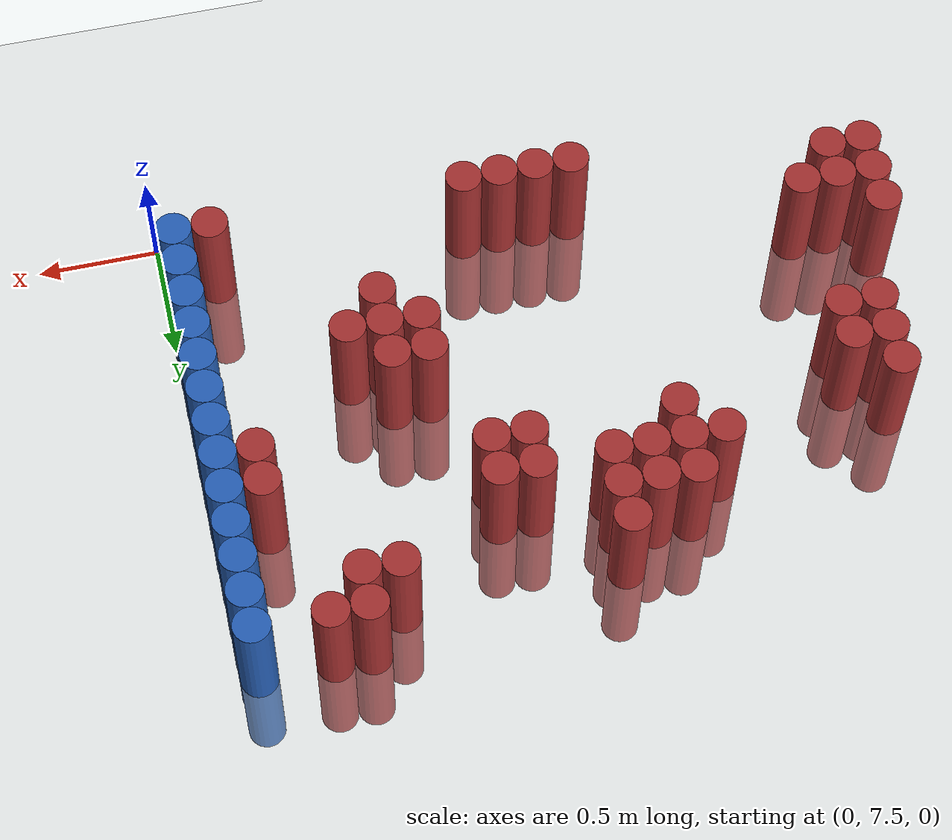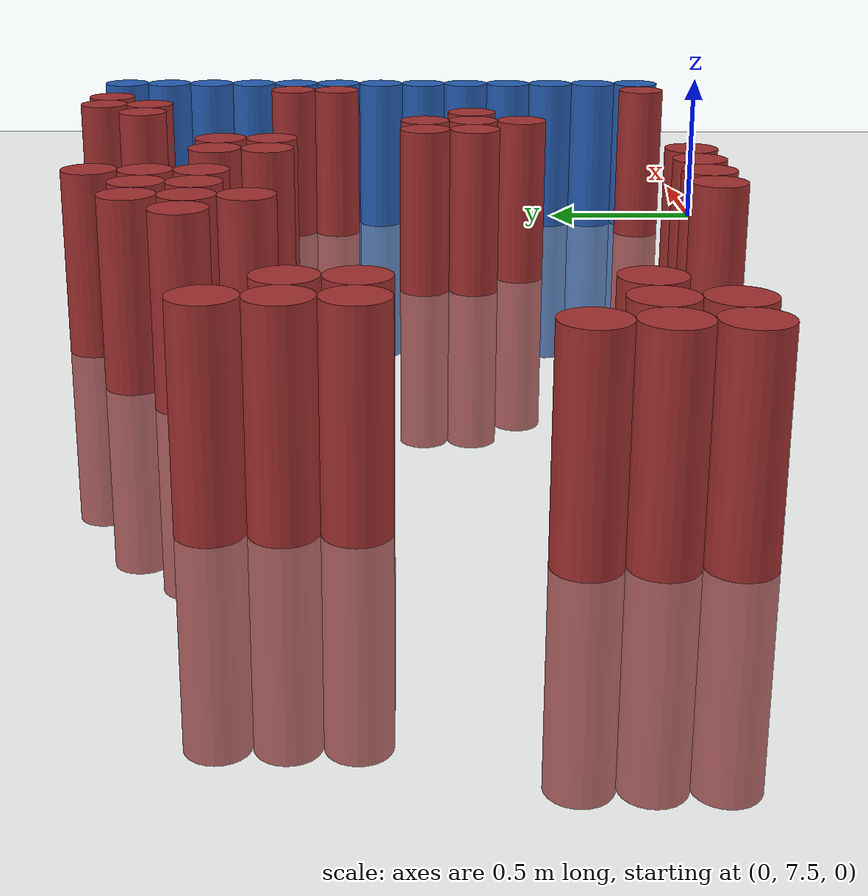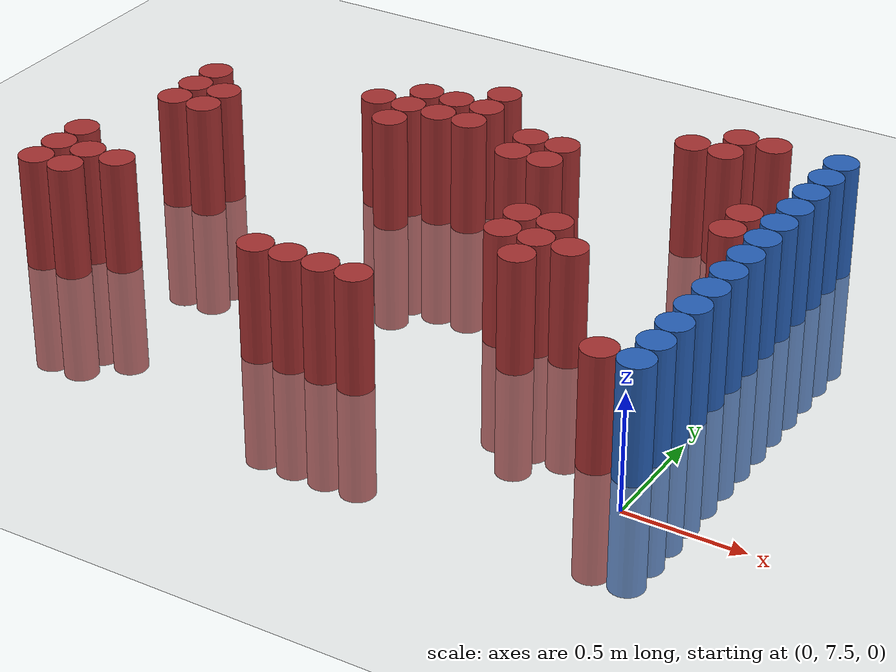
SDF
<sdf version="1.6">
 <world name="default">
  <model name="ground_plane">
   <static>1</static>
   <link name="link">
    <collision name="collision">
     <geometry><plane><normal>0 0 1</normal><size>100 100</size></plane></geometry>
     <surface><friction><ode><mu>100</mu><mu2>50</mu2></ode></friction></surface>
    </collision>
    <visual name="visual">
     <cast_shadows>0</cast_shadows>
     <geometry><plane><normal>0 0 1</normal><size>100 100</size></plane></geometry>
     <material>
      <script><uri>file://media/materials/scripts/gazebo.material</uri><name>Gazebo/Grey</name></script>
     </material>
    </visual>
   </link>
  </model>
  <model name="unit_cylinder_153">
   <static>1</static>
   <pose>-2.925000 7.875000 0.000000 0.000000 0.000000 0.000000</pose>
   <link name="link">
    <inertial>
     <mass>1</mass>
     <inertia><ixx>0.145833</ixx><ixy>0</ixy><ixz>0</ixz><iyy>0.145833</iyy><iyz>0</iyz><izz>0.125</izz></inertia>
    </inertial>
    <collision name="collision">
     <geometry><cylinder><radius>0.075000</radius><length>1</length></cylinder></geometry>
    </collision>
    <visual name="visual">
     <geometry><cylinder><radius>0.075000</radius><length>1</length></cylinder></geometry>
     <material>
      <ambient>0.648000 0.192000 0.192000 1</ambient>
      <diffuse>0.648000 0.192000 0.192000 1</diffuse>
     </material>
     <material>
      <script><name>Gazebo/Grey</name><uri>file://media/materials/scripts/gazebo.material</uri></script>
     </material>
    </visual>
   </link>
  </model>
  <model name="unit_cylinder_154">
   <static>1</static>
   <pose>-2.925000 8.025000 0.000000 0.000000 0.000000 0.000000</pose>
   <link name="link">
    <inertial>
     <mass>1</mass>
     <inertia><ixx>0.145833</ixx><ixy>0</ixy><ixz>0</ixz><iyy>0.145833</iyy><iyz>0</iyz><izz>0.125</izz></inertia>
    </inertial>
    <collision name="collision">
     <geometry><cylinder><radius>0.075000</radius><length>1</length></cylinder></geometry>
    </collision>
    <visual name="visual">
     <geometry><cylinder><radius>0.075000</radius><length>1</length></cylinder></geometry>
     <material>
      <ambient>0.648000 0.192000 0.192000 1</ambient>
      <diffuse>0.648000 0.192000 0.192000 1</diffuse>
     </material>
     <material>
      <script><name>Gazebo/Grey</name><uri>file://media/materials/scripts/gazebo.material</uri></script>
     </material>
    </visual>
   </link>
  </model>
  <model name="unit_cylinder_155">
   <static>1</static>
   <pose>-2.925000 8.175000 0.000000 0.000000 0.000000 0.000000</pose>
   <link name="link">
    <inertial>
     <mass>1</mass>
     <inertia><ixx>0.145833</ixx><ixy>0</ixy><ixz>0</ixz><iyy>0.145833</iyy><iyz>0</iyz><izz>0.125</izz></inertia>
    </inertial>
    <collision name="collision">
     <geometry><cylinder><radius>0.075000</radius><length>1</length></cylinder></geometry>
    </collision>
    <visual name="visual">
     <geometry><cylinder><radius>0.075000</radius><length>1</length></cylinder></geometry>
     <material>
      <ambient>0.648000 0.192000 0.192000 1</ambient>
      <diffuse>0.648000 0.192000 0.192000 1</diffuse>
     </material>
     <material>
      <script><name>Gazebo/Grey</name><uri>file://media/materials/scripts/gazebo.material</uri></script>
     </material>
    </visual>
   </link>
  </model>
  <model name="unit_cylinder_158">
   <static>1</static>
   <pose>-2.775000 7.875000 0.000000 0.000000 0.000000 0.000000</pose>
   <link name="link">
    <inertial>
     <mass>1</mass>
     <inertia><ixx>0.145833</ixx><ixy>0</ixy><ixz>0</ixz><iyy>0.145833</iyy><iyz>0</iyz><izz>0.125</izz></inertia>
    </inertial>
    <collision name="collision">
     <geometry><cylinder><radius>0.075000</radius><length>1</length></cylinder></geometry>
    </collision>
    <visual name="visual">
     <geometry><cylinder><radius>0.075000</radius><length>1</length></cylinder></geometry>
     <material>
      <ambient>0.648000 0.192000 0.192000 1</ambient>
      <diffuse>0.648000 0.192000 0.192000 1</diffuse>
     </material>
     <material>
      <script><name>Gazebo/Grey</name><uri>file://media/materials/scripts/gazebo.material</uri></script>
     </material>
    </visual>
   </link>
  </model>
  <model name="unit_cylinder_159">
   <static>1</static>
   <pose>-2.775000 8.025000 0.000000 0.000000 0.000000 0.000000</pose>
   <link name="link">
    <inertial>
     <mass>1</mass>
     <inertia><ixx>0.145833</ixx><ixy>0</ixy><ixz>0</ixz><iyy>0.145833</iyy><iyz>0</iyz><izz>0.125</izz></inertia>
    </inertial>
    <collision name="collision">
     <geometry><cylinder><radius>0.075000</radius><length>1</length></cylinder></geometry>
    </collision>
    <visual name="visual">
     <geometry><cylinder><radius>0.075000</radius><length>1</length></cylinder></geometry>
     <material>
      <ambient>0.648000 0.192000 0.192000 1</ambient>
      <diffuse>0.648000 0.192000 0.192000 1</diffuse>
     </material>
     <material>
      <script><name>Gazebo/Grey</name><uri>file://media/materials/scripts/gazebo.material</uri></script>
     </material>
    </visual>
   </link>
  </model>
  <model name="unit_cylinder_160">
   <static>1</static>
   <pose>-2.775000 8.625000 0.000000 0.000000 0.000000 0.000000</pose>
   <link name="link">
    <inertial>
     <mass>1</mass>
     <inertia><ixx>0.145833</ixx><ixy>0</ixy><ixz>0</ixz><iyy>0.145833</iyy><iyz>0</iyz><izz>0.125</izz></inertia>
    </inertial>
    <collision name="collision">
     <geometry><cylinder><radius>0.075000</radius><length>1</length></cylinder></geometry>
    </collision>
    <visual name="visual">
     <geometry><cylinder><radius>0.075000</radius><length>1</length></cylinder></geometry>
     <material>
      <ambient>0.648000 0.192000 0.192000 1</ambient>
      <diffuse>0.648000 0.192000 0.192000 1</diffuse>
     </material>
     <material>
      <script><name>Gazebo/Grey</name><uri>file://media/materials/scripts/gazebo.material</uri></script>
     </material>
    </visual>
   </link>
  </model>
  <model name="unit_cylinder_161">
   <static>1</static>
   <pose>-2.775000 8.775000 0.000000 0.000000 0.000000 0.000000</pose>
   <link name="link">
    <inertial>
     <mass>1</mass>
     <inertia><ixx>0.145833</ixx><ixy>0</ixy><ixz>0</ixz><iyy>0.145833</iyy><iyz>0</iyz><izz>0.125</izz></inertia>
    </inertial>
    <collision name="collision">
     <geometry><cylinder><radius>0.075000</radius><length>1</length></cylinder></geometry>
    </collision>
    <visual name="visual">
     <geometry><cylinder><radius>0.075000</radius><length>1</length></cylinder></geometry>
     <material>
      <ambient>0.648000 0.192000 0.192000 1</ambient>
      <diffuse>0.648000 0.192000 0.192000 1</diffuse>
     </material>
     <material>
      <script><name>Gazebo/Grey</name><uri>file://media/materials/scripts/gazebo.material</uri></script>
     </material>
    </visual>
   </link>
  </model>
  <model name="unit_cylinder_162">
   <static>1</static>
   <pose>-2.775000 8.925000 0.000000 0.000000 0.000000 0.000000</pose>
   <link name="link">
    <inertial>
     <mass>1</mass>
     <inertia><ixx>0.145833</ixx><ixy>0</ixy><ixz>0</ixz><iyy>0.145833</iyy><iyz>0</iyz><izz>0.125</izz></inertia>
    </inertial>
    <collision name="collision">
     <geometry><cylinder><radius>0.075000</radius><length>1</length></cylinder></geometry>
    </collision>
    <visual name="visual">
     <geometry><cylinder><radius>0.075000</radius><length>1</length></cylinder></geometry>
     <material>
      <ambient>0.648000 0.192000 0.192000 1</ambient>
      <diffuse>0.648000 0.192000 0.192000 1</diffuse>
     </material>
     <material>
      <script><name>Gazebo/Grey</name><uri>file://media/materials/scripts/gazebo.material</uri></script>
     </material>
    </visual>
   </link>
  </model>
  <model name="unit_cylinder_166">
   <static>1</static>
   <pose>-2.625000 8.025000 0.000000 0.000000 0.000000 0.000000</pose>
   <link name="link">
    <inertial>
     <mass>1</mass>
     <inertia><ixx>0.145833</ixx><ixy>0</ixy><ixz>0</ixz><iyy>0.145833</iyy><iyz>0</iyz><izz>0.125</izz></inertia>
    </inertial>
    <collision name="collision">
     <geometry><cylinder><radius>0.075000</radius><length>1</length></cylinder></geometry>
    </collision>
    <visual name="visual">
     <geometry><cylinder><radius>0.075000</radius><length>1</length></cylinder></geometry>
     <material>
      <ambient>0.648000 0.192000 0.192000 1</ambient>
      <diffuse>0.648000 0.192000 0.192000 1</diffuse>
     </material>
     <material>
      <script><name>Gazebo/Grey</name><uri>file://media/materials/scripts/gazebo.material</uri></script>
     </material>
    </visual>
   </link>
  </model>
  <model name="unit_cylinder_167">
   <static>1</static>
   <pose>-2.625000 8.625000 0.000000 0.000000 0.000000 0.000000</pose>
   <link name="link">
    <inertial>
     <mass>1</mass>
     <inertia><ixx>0.145833</ixx><ixy>0</ixy><ixz>0</ixz><iyy>0.145833</iyy><iyz>0</iyz><izz>0.125</izz></inertia>
    </inertial>
    <collision name="collision">
     <geometry><cylinder><radius>0.075000</radius><length>1</length></cylinder></geometry>
    </collision>
    <visual name="visual">
     <geometry><cylinder><radius>0.075000</radius><length>1</length></cylinder></geometry>
     <material>
      <ambient>0.648000 0.192000 0.192000 1</ambient>
      <diffuse>0.648000 0.192000 0.192000 1</diffuse>
     </material>
     <material>
      <script><name>Gazebo/Grey</name><uri>file://media/materials/scripts/gazebo.material</uri></script>
     </material>
    </visual>
   </link>
  </model>
  <model name="unit_cylinder_168">
   <static>1</static>
   <pose>-2.625000 8.775000 0.000000 0.000000 0.000000 0.000000</pose>
   <link name="link">
    <inertial>
     <mass>1</mass>
     <inertia><ixx>0.145833</ixx><ixy>0</ixy><ixz>0</ixz><iyy>0.145833</iyy><iyz>0</iyz><izz>0.125</izz></inertia>
    </inertial>
    <collision name="collision">
     <geometry><cylinder><radius>0.075000</radius><length>1</length></cylinder></geometry>
    </collision>
    <visual name="visual">
     <geometry><cylinder><radius>0.075000</radius><length>1</length></cylinder></geometry>
     <material>
      <ambient>0.648000 0.192000 0.192000 1</ambient>
      <diffuse>0.648000 0.192000 0.192000 1</diffuse>
     </material>
     <material>
      <script><name>Gazebo/Grey</name><uri>file://media/materials/scripts/gazebo.material</uri></script>
     </material>
    </visual>
   </link>
  </model>
  <model name="unit_cylinder_179">
   <static>1</static>
   <pose>-2.025000 9.075000 0.000000 0.000000 0.000000 0.000000</pose>
   <link name="link">
    <inertial>
     <mass>1</mass>
     <inertia><ixx>0.145833</ixx><ixy>0</ixy><ixz>0</ixz><iyy>0.145833</iyy><iyz>0</iyz><izz>0.125</izz></inertia>
    </inertial>
    <collision name="collision">
     <geometry><cylinder><radius>0.075000</radius><length>1</length></cylinder></geometry>
    </collision>
    <visual name="visual">
     <geometry><cylinder><radius>0.075000</radius><length>1</length></cylinder></geometry>
     <material>
      <ambient>0.648000 0.192000 0.192000 1</ambient>
      <diffuse>0.648000 0.192000 0.192000 1</diffuse>
     </material>
     <material>
      <script><name>Gazebo/Grey</name><uri>file://media/materials/scripts/gazebo.material</uri></script>
     </material>
    </visual>
   </link>
  </model>
  <model name="unit_cylinder_180">
   <static>1</static>
   <pose>-1.875000 8.925000 0.000000 0.000000 0.000000 0.000000</pose>
   <link name="link">
    <inertial>
     <mass>1</mass>
     <inertia><ixx>0.145833</ixx><ixy>0</ixy><ixz>0</ixz><iyy>0.145833</iyy><iyz>0</iyz><izz>0.125</izz></inertia>
    </inertial>
    <collision name="collision">
     <geometry><cylinder><radius>0.075000</radius><length>1</length></cylinder></geometry>
    </collision>
    <visual name="visual">
     <geometry><cylinder><radius>0.075000</radius><length>1</length></cylinder></geometry>
     <material>
      <ambient>0.648000 0.192000 0.192000 1</ambient>
      <diffuse>0.648000 0.192000 0.192000 1</diffuse>
     </material>
     <material>
      <script><name>Gazebo/Grey</name><uri>file://media/materials/scripts/gazebo.material</uri></script>
     </material>
    </visual>
   </link>
  </model>
  <model name="unit_cylinder_181">
   <static>1</static>
   <pose>-1.875000 9.075000 0.000000 0.000000 0.000000 0.000000</pose>
   <link name="link">
    <inertial>
     <mass>1</mass>
     <inertia><ixx>0.145833</ixx><ixy>0</ixy><ixz>0</ixz><iyy>0.145833</iyy><iyz>0</iyz><izz>0.125</izz></inertia>
    </inertial>
    <collision name="collision">
     <geometry><cylinder><radius>0.075000</radius><length>1</length></cylinder></geometry>
    </collision>
    <visual name="visual">
     <geometry><cylinder><radius>0.075000</radius><length>1</length></cylinder></geometry>
     <material>
      <ambient>0.648000 0.192000 0.192000 1</ambient>
      <diffuse>0.648000 0.192000 0.192000 1</diffuse>
     </material>
     <material>
      <script><name>Gazebo/Grey</name><uri>file://media/materials/scripts/gazebo.material</uri></script>
     </material>
    </visual>
   </link>
  </model>
  <model name="unit_cylinder_182">
   <static>1</static>
   <pose>-1.875000 9.225000 0.000000 0.000000 0.000000 0.000000</pose>
   <link name="link">
    <inertial>
     <mass>1</mass>
     <inertia><ixx>0.145833</ixx><ixy>0</ixy><ixz>0</ixz><iyy>0.145833</iyy><iyz>0</iyz><izz>0.125</izz></inertia>
    </inertial>
    <collision name="collision">
     <geometry><cylinder><radius>0.075000</radius><length>1</length></cylinder></geometry>
    </collision>
    <visual name="visual">
     <geometry><cylinder><radius>0.075000</radius><length>1</length></cylinder></geometry>
     <material>
      <ambient>0.648000 0.192000 0.192000 1</ambient>
      <diffuse>0.648000 0.192000 0.192000 1</diffuse>
     </material>
     <material>
      <script><name>Gazebo/Grey</name><uri>file://media/materials/scripts/gazebo.material</uri></script>
     </material>
    </visual>
   </link>
  </model>
  <model name="unit_cylinder_183">
   <static>1</static>
   <pose>-1.725000 7.725000 0.000000 0.000000 0.000000 0.000000</pose>
   <link name="link">
    <inertial>
     <mass>1</mass>
     <inertia><ixx>0.145833</ixx><ixy>0</ixy><ixz>0</ixz><iyy>0.145833</iyy><iyz>0</iyz><izz>0.125</izz></inertia>
    </inertial>
    <collision name="collision">
     <geometry><cylinder><radius>0.075000</radius><length>1</length></cylinder></geometry>
    </collision>
    <visual name="visual">
     <geometry><cylinder><radius>0.075000</radius><length>1</length></cylinder></geometry>
     <material>
      <ambient>0.648000 0.192000 0.192000 1</ambient>
      <diffuse>0.648000 0.192000 0.192000 1</diffuse>
     </material>
     <material>
      <script><name>Gazebo/Grey</name><uri>file://media/materials/scripts/gazebo.material</uri></script>
     </material>
    </visual>
   </link>
  </model>
  <model name="unit_cylinder_184">
   <static>1</static>
   <pose>-1.725000 9.075000 0.000000 0.000000 0.000000 0.000000</pose>
   <link name="link">
    <inertial>
     <mass>1</mass>
     <inertia><ixx>0.145833</ixx><ixy>0</ixy><ixz>0</ixz><iyy>0.145833</iyy><iyz>0</iyz><izz>0.125</izz></inertia>
    </inertial>
    <collision name="collision">
     <geometry><cylinder><radius>0.075000</radius><length>1</length></cylinder></geometry>
    </collision>
    <visual name="visual">
     <geometry><cylinder><radius>0.075000</radius><length>1</length></cylinder></geometry>
     <material>
      <ambient>0.648000 0.192000 0.192000 1</ambient>
      <diffuse>0.648000 0.192000 0.192000 1</diffuse>
     </material>
     <material>
      <script><name>Gazebo/Grey</name><uri>file://media/materials/scripts/gazebo.material</uri></script>
     </material>
    </visual>
   </link>
  </model>
  <model name="unit_cylinder_185">
   <static>1</static>
   <pose>-1.725000 9.225000 0.000000 0.000000 0.000000 0.000000</pose>
   <link name="link">
    <inertial>
     <mass>1</mass>
     <inertia><ixx>0.145833</ixx><ixy>0</ixy><ixz>0</ixz><iyy>0.145833</iyy><iyz>0</iyz><izz>0.125</izz></inertia>
    </inertial>
    <collision name="collision">
     <geometry><cylinder><radius>0.075000</radius><length>1</length></cylinder></geometry>
    </collision>
    <visual name="visual">
     <geometry><cylinder><radius>0.075000</radius><length>1</length></cylinder></geometry>
     <material>
      <ambient>0.648000 0.192000 0.192000 1</ambient>
      <diffuse>0.648000 0.192000 0.192000 1</diffuse>
     </material>
     <material>
      <script><name>Gazebo/Grey</name><uri>file://media/materials/scripts/gazebo.material</uri></script>
     </material>
    </visual>
   </link>
  </model>
  <model name="unit_cylinder_187">
   <static>1</static>
   <pose>-1.575000 7.725000 0.000000 0.000000 0.000000 0.000000</pose>
   <link name="link">
    <inertial>
     <mass>1</mass>
     <inertia><ixx>0.145833</ixx><ixy>0</ixy><ixz>0</ixz><iyy>0.145833</iyy><iyz>0</iyz><izz>0.125</izz></inertia>
    </inertial>
    <collision name="collision">
     <geometry><cylinder><radius>0.075000</radius><length>1</length></cylinder></geometry>
    </collision>
    <visual name="visual">
     <geometry><cylinder><radius>0.075000</radius><length>1</length></cylinder></geometry>
     <material>
      <ambient>0.648000 0.192000 0.192000 1</ambient>
      <diffuse>0.648000 0.192000 0.192000 1</diffuse>
     </material>
     <material>
      <script><name>Gazebo/Grey</name><uri>file://media/materials/scripts/gazebo.material</uri></script>
     </material>
    </visual>
   </link>
  </model>
  <model name="unit_cylinder_188">
   <static>1</static>
   <pose>-1.575000 9.075000 0.000000 0.000000 0.000000 0.000000</pose>
   <link name="link">
    <inertial>
     <mass>1</mass>
     <inertia><ixx>0.145833</ixx><ixy>0</ixy><ixz>0</ixz><iyy>0.145833</iyy><iyz>0</iyz><izz>0.125</izz></inertia>
    </inertial>
    <collision name="collision">
     <geometry><cylinder><radius>0.075000</radius><length>1</length></cylinder></geometry>
    </collision>
    <visual name="visual">
     <geometry><cylinder><radius>0.075000</radius><length>1</length></cylinder></geometry>
     <material>
      <ambient>0.648000 0.192000 0.192000 1</ambient>
      <diffuse>0.648000 0.192000 0.192000 1</diffuse>
     </material>
     <material>
      <script><name>Gazebo/Grey</name><uri>file://media/materials/scripts/gazebo.material</uri></script>
     </material>
    </visual>
   </link>
  </model>
  <model name="unit_cylinder_189">
   <static>1</static>
   <pose>-1.575000 9.225000 0.000000 0.000000 0.000000 0.000000</pose>
   <link name="link">
    <inertial>
     <mass>1</mass>
     <inertia><ixx>0.145833</ixx><ixy>0</ixy><ixz>0</ixz><iyy>0.145833</iyy><iyz>0</iyz><izz>0.125</izz></inertia>
    </inertial>
    <collision name="collision">
     <geometry><cylinder><radius>0.075000</radius><length>1</length></cylinder></geometry>
    </collision>
    <visual name="visual">
     <geometry><cylinder><radius>0.075000</radius><length>1</length></cylinder></geometry>
     <material>
      <ambient>0.648000 0.192000 0.192000 1</ambient>
      <diffuse>0.648000 0.192000 0.192000 1</diffuse>
     </material>
     <material>
      <script><name>Gazebo/Grey</name><uri>file://media/materials/scripts/gazebo.material</uri></script>
     </material>
    </visual>
   </link>
  </model>
  <model name="unit_cylinder_190">
   <static>1</static>
   <pose>-1.575000 9.375000 0.000000 0.000000 0.000000 0.000000</pose>
   <link name="link">
    <inertial>
     <mass>1</mass>
     <inertia><ixx>0.145833</ixx><ixy>0</ixy><ixz>0</ixz><iyy>0.145833</iyy><iyz>0</iyz><izz>0.125</izz></inertia>
    </inertial>
    <collision name="collision">
     <geometry><cylinder><radius>0.075000</radius><length>1</length></cylinder></geometry>
    </collision>
    <visual name="visual">
     <geometry><cylinder><radius>0.075000</radius><length>1</length></cylinder></geometry>
     <material>
      <ambient>0.648000 0.192000 0.192000 1</ambient>
      <diffuse>0.648000 0.192000 0.192000 1</diffuse>
     </material>
     <material>
      <script><name>Gazebo/Grey</name><uri>file://media/materials/scripts/gazebo.material</uri></script>
     </material>
    </visual>
   </link>
  </model>
  <model name="unit_cylinder_193">
   <static>1</static>
   <pose>-1.425000 7.725000 0.000000 0.000000 0.000000 0.000000</pose>
   <link name="link">
    <inertial>
     <mass>1</mass>
     <inertia><ixx>0.145833</ixx><ixy>0</ixy><ixz>0</ixz><iyy>0.145833</iyy><iyz>0</iyz><izz>0.125</izz></inertia>
    </inertial>
    <collision name="collision">
     <geometry><cylinder><radius>0.075000</radius><length>1</length></cylinder></geometry>
    </collision>
    <visual name="visual">
     <geometry><cylinder><radius>0.075000</radius><length>1</length></cylinder></geometry>
     <material>
      <ambient>0.648000 0.192000 0.192000 1</ambient>
      <diffuse>0.648000 0.192000 0.192000 1</diffuse>
     </material>
     <material>
      <script><name>Gazebo/Grey</name><uri>file://media/materials/scripts/gazebo.material</uri></script>
     </material>
    </visual>
   </link>
  </model>
  <model name="unit_cylinder_198">
   <static>1</static>
   <pose>-1.275000 7.725000 0.000000 0.000000 0.000000 0.000000</pose>
   <link name="link">
    <inertial>
     <mass>1</mass>
     <inertia><ixx>0.145833</ixx><ixy>0</ixy><ixz>0</ixz><iyy>0.145833</iyy><iyz>0</iyz><izz>0.125</izz></inertia>
    </inertial>
    <collision name="collision">
     <geometry><cylinder><radius>0.075000</radius><length>1</length></cylinder></geometry>
    </collision>
    <visual name="visual">
     <geometry><cylinder><radius>0.075000</radius><length>1</length></cylinder></geometry>
     <material>
      <ambient>0.648000 0.192000 0.192000 1</ambient>
      <diffuse>0.648000 0.192000 0.192000 1</diffuse>
     </material>
     <material>
      <script><name>Gazebo/Grey</name><uri>file://media/materials/scripts/gazebo.material</uri></script>
     </material>
    </visual>
   </link>
  </model>
  <model name="unit_cylinder_199">
   <static>1</static>
   <pose>-1.275000 8.925000 0.000000 0.000000 0.000000 0.000000</pose>
   <link name="link">
    <inertial>
     <mass>1</mass>
     <inertia><ixx>0.145833</ixx><ixy>0</ixy><ixz>0</ixz><iyy>0.145833</iyy><iyz>0</iyz><izz>0.125</izz></inertia>
    </inertial>
    <collision name="collision">
     <geometry><cylinder><radius>0.075000</radius><length>1</length></cylinder></geometry>
    </collision>
    <visual name="visual">
     <geometry><cylinder><radius>0.075000</radius><length>1</length></cylinder></geometry>
     <material>
      <ambient>0.648000 0.192000 0.192000 1</ambient>
      <diffuse>0.648000 0.192000 0.192000 1</diffuse>
     </material>
     <material>
      <script><name>Gazebo/Grey</name><uri>file://media/materials/scripts/gazebo.material</uri></script>
     </material>
    </visual>
   </link>
  </model>
  <model name="unit_cylinder_200">
   <static>1</static>
   <pose>-1.275000 9.075000 0.000000 0.000000 0.000000 0.000000</pose>
   <link name="link">
    <inertial>
     <mass>1</mass>
     <inertia><ixx>0.145833</ixx><ixy>0</ixy><ixz>0</ixz><iyy>0.145833</iyy><iyz>0</iyz><izz>0.125</izz></inertia>
    </inertial>
    <collision name="collision">
     <geometry><cylinder><radius>0.075000</radius><length>1</length></cylinder></geometry>
    </collision>
    <visual name="visual">
     <geometry><cylinder><radius>0.075000</radius><length>1</length></cylinder></geometry>
     <material>
      <ambient>0.648000 0.192000 0.192000 1</ambient>
      <diffuse>0.648000 0.192000 0.192000 1</diffuse>
     </material>
     <material>
      <script><name>Gazebo/Grey</name><uri>file://media/materials/scripts/gazebo.material</uri></script>
     </material>
    </visual>
   </link>
  </model>
  <model name="unit_cylinder_206">
   <static>1</static>
   <pose>-1.125000 8.925000 0.000000 0.000000 0.000000 0.000000</pose>
   <link name="link">
    <inertial>
     <mass>1</mass>
     <inertia><ixx>0.145833</ixx><ixy>0</ixy><ixz>0</ixz><iyy>0.145833</iyy><iyz>0</iyz><izz>0.125</izz></inertia>
    </inertial>
    <collision name="collision">
     <geometry><cylinder><radius>0.075000</radius><length>1</length></cylinder></geometry>
    </collision>
    <visual name="visual">
     <geometry><cylinder><radius>0.075000</radius><length>1</length></cylinder></geometry>
     <material>
      <ambient>0.648000 0.192000 0.192000 1</ambient>
      <diffuse>0.648000 0.192000 0.192000 1</diffuse>
     </material>
     <material>
      <script><name>Gazebo/Grey</name><uri>file://media/materials/scripts/gazebo.material</uri></script>
     </material>
    </visual>
   </link>
  </model>
  <model name="unit_cylinder_207">
   <static>1</static>
   <pose>-1.125000 9.075000 0.000000 0.000000 0.000000 0.000000</pose>
   <link name="link">
    <inertial>
     <mass>1</mass>
     <inertia><ixx>0.145833</ixx><ixy>0</ixy><ixz>0</ixz><iyy>0.145833</iyy><iyz>0</iyz><izz>0.125</izz></inertia>
    </inertial>
    <collision name="collision">
     <geometry><cylinder><radius>0.075000</radius><length>1</length></cylinder></geometry>
    </collision>
    <visual name="visual">
     <geometry><cylinder><radius>0.075000</radius><length>1</length></cylinder></geometry>
     <material>
      <ambient>0.648000 0.192000 0.192000 1</ambient>
      <diffuse>0.648000 0.192000 0.192000 1</diffuse>
     </material>
     <material>
      <script><name>Gazebo/Grey</name><uri>file://media/materials/scripts/gazebo.material</uri></script>
     </material>
    </visual>
   </link>
  </model>
  <model name="unit_cylinder_213">
   <static>1</static>
   <pose>-0.975000 8.325000 0.000000 0.000000 0.000000 0.000000</pose>
   <link name="link">
    <inertial>
     <mass>1</mass>
     <inertia><ixx>0.145833</ixx><ixy>0</ixy><ixz>0</ixz><iyy>0.145833</iyy><iyz>0</iyz><izz>0.125</izz></inertia>
    </inertial>
    <collision name="collision">
     <geometry><cylinder><radius>0.075000</radius><length>1</length></cylinder></geometry>
    </collision>
    <visual name="visual">
     <geometry><cylinder><radius>0.075000</radius><length>1</length></cylinder></geometry>
     <material>
      <ambient>0.648000 0.192000 0.192000 1</ambient>
      <diffuse>0.648000 0.192000 0.192000 1</diffuse>
     </material>
     <material>
      <script><name>Gazebo/Grey</name><uri>file://media/materials/scripts/gazebo.material</uri></script>
     </material>
    </visual>
   </link>
  </model>
  <model name="unit_cylinder_214">
   <static>1</static>
   <pose>-0.975000 8.475000 0.000000 0.000000 0.000000 0.000000</pose>
   <link name="link">
    <inertial>
     <mass>1</mass>
     <inertia><ixx>0.145833</ixx><ixy>0</ixy><ixz>0</ixz><iyy>0.145833</iyy><iyz>0</iyz><izz>0.125</izz></inertia>
    </inertial>
    <collision name="collision">
     <geometry><cylinder><radius>0.075000</radius><length>1</length></cylinder></geometry>
    </collision>
    <visual name="visual">
     <geometry><cylinder><radius>0.075000</radius><length>1</length></cylinder></geometry>
     <material>
      <ambient>0.648000 0.192000 0.192000 1</ambient>
      <diffuse>0.648000 0.192000 0.192000 1</diffuse>
     </material>
     <material>
      <script><name>Gazebo/Grey</name><uri>file://media/materials/scripts/gazebo.material</uri></script>
     </material>
    </visual>
   </link>
  </model>
  <model name="unit_cylinder_217">
   <static>1</static>
   <pose>-0.825000 8.175000 0.000000 0.000000 0.000000 0.000000</pose>
   <link name="link">
    <inertial>
     <mass>1</mass>
     <inertia><ixx>0.145833</ixx><ixy>0</ixy><ixz>0</ixz><iyy>0.145833</iyy><iyz>0</iyz><izz>0.125</izz></inertia>
    </inertial>
    <collision name="collision">
     <geometry><cylinder><radius>0.075000</radius><length>1</length></cylinder></geometry>
    </collision>
    <visual name="visual">
     <geometry><cylinder><radius>0.075000</radius><length>1</length></cylinder></geometry>
     <material>
      <ambient>0.648000 0.192000 0.192000 1</ambient>
      <diffuse>0.648000 0.192000 0.192000 1</diffuse>
     </material>
     <material>
      <script><name>Gazebo/Grey</name><uri>file://media/materials/scripts/gazebo.material</uri></script>
     </material>
    </visual>
   </link>
  </model>
  <model name="unit_cylinder_218">
   <static>1</static>
   <pose>-0.825000 8.325000 0.000000 0.000000 0.000000 0.000000</pose>
   <link name="link">
    <inertial>
     <mass>1</mass>
     <inertia><ixx>0.145833</ixx><ixy>0</ixy><ixz>0</ixz><iyy>0.145833</iyy><iyz>0</iyz><izz>0.125</izz></inertia>
    </inertial>
    <collision name="collision">
     <geometry><cylinder><radius>0.075000</radius><length>1</length></cylinder></geometry>
    </collision>
    <visual name="visual">
     <geometry><cylinder><radius>0.075000</radius><length>1</length></cylinder></geometry>
     <material>
      <ambient>0.648000 0.192000 0.192000 1</ambient>
      <diffuse>0.648000 0.192000 0.192000 1</diffuse>
     </material>
     <material>
      <script><name>Gazebo/Grey</name><uri>file://media/materials/scripts/gazebo.material</uri></script>
     </material>
    </visual>
   </link>
  </model>
  <model name="unit_cylinder_219">
   <static>1</static>
   <pose>-0.825000 8.475000 0.000000 0.000000 0.000000 0.000000</pose>
   <link name="link">
    <inertial>
     <mass>1</mass>
     <inertia><ixx>0.145833</ixx><ixy>0</ixy><ixz>0</ixz><iyy>0.145833</iyy><iyz>0</iyz><izz>0.125</izz></inertia>
    </inertial>
    <collision name="collision">
     <geometry><cylinder><radius>0.075000</radius><length>1</length></cylinder></geometry>
    </collision>
    <visual name="visual">
     <geometry><cylinder><radius>0.075000</radius><length>1</length></cylinder></geometry>
     <material>
      <ambient>0.648000 0.192000 0.192000 1</ambient>
      <diffuse>0.648000 0.192000 0.192000 1</diffuse>
     </material>
     <material>
      <script><name>Gazebo/Grey</name><uri>file://media/materials/scripts/gazebo.material</uri></script>
     </material>
    </visual>
   </link>
  </model>
  <model name="unit_cylinder_221">
   <static>1</static>
   <pose>-0.675000 8.325000 0.000000 0.000000 0.000000 0.000000</pose>
   <link name="link">
    <inertial>
     <mass>1</mass>
     <inertia><ixx>0.145833</ixx><ixy>0</ixy><ixz>0</ixz><iyy>0.145833</iyy><iyz>0</iyz><izz>0.125</izz></inertia>
    </inertial>
    <collision name="collision">
     <geometry><cylinder><radius>0.075000</radius><length>1</length></cylinder></geometry>
    </collision>
    <visual name="visual">
     <geometry><cylinder><radius>0.075000</radius><length>1</length></cylinder></geometry>
     <material>
      <ambient>0.648000 0.192000 0.192000 1</ambient>
      <diffuse>0.648000 0.192000 0.192000 1</diffuse>
     </material>
     <material>
      <script><name>Gazebo/Grey</name><uri>file://media/materials/scripts/gazebo.material</uri></script>
     </material>
    </visual>
   </link>
  </model>
  <model name="unit_cylinder_222">
   <static>1</static>
   <pose>-0.675000 9.375000 0.000000 0.000000 0.000000 0.000000</pose>
   <link name="link">
    <inertial>
     <mass>1</mass>
     <inertia><ixx>0.145833</ixx><ixy>0</ixy><ixz>0</ixz><iyy>0.145833</iyy><iyz>0</iyz><izz>0.125</izz></inertia>
    </inertial>
    <collision name="collision">
     <geometry><cylinder><radius>0.075000</radius><length>1</length></cylinder></geometry>
    </collision>
    <visual name="visual">
     <geometry><cylinder><radius>0.075000</radius><length>1</length></cylinder></geometry>
     <material>
      <ambient>0.648000 0.192000 0.192000 1</ambient>
      <diffuse>0.648000 0.192000 0.192000 1</diffuse>
     </material>
     <material>
      <script><name>Gazebo/Grey</name><uri>file://media/materials/scripts/gazebo.material</uri></script>
     </material>
    </visual>
   </link>
  </model>
  <model name="unit_cylinder_225">
   <static>1</static>
   <pose>-0.525000 9.375000 0.000000 0.000000 0.000000 0.000000</pose>
   <link name="link">
    <inertial>
     <mass>1</mass>
     <inertia><ixx>0.145833</ixx><ixy>0</ixy><ixz>0</ixz><iyy>0.145833</iyy><iyz>0</iyz><izz>0.125</izz></inertia>
    </inertial>
    <collision name="collision">
     <geometry><cylinder><radius>0.075000</radius><length>1</length></cylinder></geometry>
    </collision>
    <visual name="visual">
     <geometry><cylinder><radius>0.075000</radius><length>1</length></cylinder></geometry>
     <material>
      <ambient>0.648000 0.192000 0.192000 1</ambient>
      <diffuse>0.648000 0.192000 0.192000 1</diffuse>
     </material>
     <material>
      <script><name>Gazebo/Grey</name><uri>file://media/materials/scripts/gazebo.material</uri></script>
     </material>
    </visual>
   </link>
  </model>
  <model name="unit_cylinder_226">
   <static>1</static>
   <pose>-0.525000 9.525000 0.000000 0.000000 0.000000 0.000000</pose>
   <link name="link">
    <inertial>
     <mass>1</mass>
     <inertia><ixx>0.145833</ixx><ixy>0</ixy><ixz>0</ixz><iyy>0.145833</iyy><iyz>0</iyz><izz>0.125</izz></inertia>
    </inertial>
    <collision name="collision">
     <geometry><cylinder><radius>0.075000</radius><length>1</length></cylinder></geometry>
    </collision>
    <visual name="visual">
     <geometry><cylinder><radius>0.075000</radius><length>1</length></cylinder></geometry>
     <material>
      <ambient>0.648000 0.192000 0.192000 1</ambient>
      <diffuse>0.648000 0.192000 0.192000 1</diffuse>
     </material>
     <material>
      <script><name>Gazebo/Grey</name><uri>file://media/materials/scripts/gazebo.material</uri></script>
     </material>
    </visual>
   </link>
  </model>
  <model name="unit_cylinder_228">
   <static>1</static>
   <pose>-0.375000 9.525000 0.000000 0.000000 0.000000 0.000000</pose>
   <link name="link">
    <inertial>
     <mass>1</mass>
     <inertia><ixx>0.145833</ixx><ixy>0</ixy><ixz>0</ixz><iyy>0.145833</iyy><iyz>0</iyz><izz>0.125</izz></inertia>
    </inertial>
    <collision name="collision">
     <geometry><cylinder><radius>0.075000</radius><length>1</length></cylinder></geometry>
    </collision>
    <visual name="visual">
     <geometry><cylinder><radius>0.075000</radius><length>1</length></cylinder></geometry>
     <material>
      <ambient>0.648000 0.192000 0.192000 1</ambient>
      <diffuse>0.648000 0.192000 0.192000 1</diffuse>
     </material>
     <material>
      <script><name>Gazebo/Grey</name><uri>file://media/materials/scripts/gazebo.material</uri></script>
     </material>
    </visual>
   </link>
  </model>
  <model name="unit_cylinder_236">
   <static>1</static>
   <pose>-0.225000 7.725000 0.000000 0.000000 0.000000 0.000000</pose>
   <link name="link">
    <inertial>
     <mass>1</mass>
     <inertia><ixx>0.145833</ixx><ixy>0</ixy><ixz>0</ixz><iyy>0.145833</iyy><iyz>0</iyz><izz>0.125</izz></inertia>
    </inertial>
    <collision name="collision">
     <geometry><cylinder><radius>0.075000</radius><length>1</length></cylinder></geometry>
    </collision>
    <visual name="visual">
     <geometry><cylinder><radius>0.075000</radius><length>1</length></cylinder></geometry>
     <material>
      <ambient>0.648000 0.192000 0.192000 1</ambient>
      <diffuse>0.648000 0.192000 0.192000 1</diffuse>
     </material>
     <material>
      <script><name>Gazebo/Grey</name><uri>file://media/materials/scripts/gazebo.material</uri></script>
     </material>
    </visual>
   </link>
  </model>
  <model name="unit_cylinder_237">
   <static>1</static>
   <pose>-0.225000 8.775000 0.000000 0.000000 0.000000 0.000000</pose>
   <link name="link">
    <inertial>
     <mass>1</mass>
     <inertia><ixx>0.145833</ixx><ixy>0</ixy><ixz>0</ixz><iyy>0.145833</iyy><iyz>0</iyz><izz>0.125</izz></inertia>
    </inertial>
    <collision name="collision">
     <geometry><cylinder><radius>0.075000</radius><length>1</length></cylinder></geometry>
    </collision>
    <visual name="visual">
     <geometry><cylinder><radius>0.075000</radius><length>1</length></cylinder></geometry>
     <material>
      <ambient>0.648000 0.192000 0.192000 1</ambient>
      <diffuse>0.648000 0.192000 0.192000 1</diffuse>
     </material>
     <material>
      <script><name>Gazebo/Grey</name><uri>file://media/materials/scripts/gazebo.material</uri></script>
     </material>
    </visual>
   </link>
  </model>
  <model name="unit_cylinder_238">
   <static>1</static>
   <pose>-0.225000 8.925000 0.000000 0.000000 0.000000 0.000000</pose>
   <link name="link">
    <inertial>
     <mass>1</mass>
     <inertia><ixx>0.145833</ixx><ixy>0</ixy><ixz>0</ixz><iyy>0.145833</iyy><iyz>0</iyz><izz>0.125</izz></inertia>
    </inertial>
    <collision name="collision">
     <geometry><cylinder><radius>0.075000</radius><length>1</length></cylinder></geometry>
    </collision>
    <visual name="visual">
     <geometry><cylinder><radius>0.075000</radius><length>1</length></cylinder></geometry>
     <material>
      <ambient>0.648000 0.192000 0.192000 1</ambient>
      <diffuse>0.648000 0.192000 0.192000 1</diffuse>
     </material>
     <material>
      <script><name>Gazebo/Grey</name><uri>file://media/materials/scripts/gazebo.material</uri></script>
     </material>
    </visual>
   </link>
  </model>
  <model name="unit_cylinder_256">
   <static>1</static>
   <pose>-0.075000 7.725000 0.000000 0.000000 0.000000 0.000000</pose>
   <link name="link">
    <inertial>
     <mass>1</mass>
     <inertia><ixx>0.145833</ixx><ixy>0</ixy><ixz>0</ixz><iyy>0.145833</iyy><iyz>0</iyz><izz>0.125</izz></inertia>
    </inertial>
    <collision name="collision">
     <geometry><cylinder><radius>0.075000</radius><length>1</length></cylinder></geometry>
    </collision>
    <visual name="visual">
     <geometry><cylinder><radius>0.075000</radius><length>1</length></cylinder></geometry>
     <material>
      <ambient>0.152000 0.379000 0.720000 1</ambient>
      <diffuse>0.152000 0.379000 0.720000 1</diffuse>
     </material>
     <material>
      <script><name>Gazebo/Grey</name><uri>file://media/materials/scripts/gazebo.material</uri></script>
     </material>
    </visual>
   </link>
  </model>
  <model name="unit_cylinder_257">
   <static>1</static>
   <pose>-0.075000 7.875000 0.000000 0.000000 0.000000 0.000000</pose>
   <link name="link">
    <inertial>
     <mass>1</mass>
     <inertia><ixx>0.145833</ixx><ixy>0</ixy><ixz>0</ixz><iyy>0.145833</iyy><iyz>0</iyz><izz>0.125</izz></inertia>
    </inertial>
    <collision name="collision">
     <geometry><cylinder><radius>0.075000</radius><length>1</length></cylinder></geometry>
    </collision>
    <visual name="visual">
     <geometry><cylinder><radius>0.075000</radius><length>1</length></cylinder></geometry>
     <material>
      <ambient>0.152000 0.379000 0.720000 1</ambient>
      <diffuse>0.152000 0.379000 0.720000 1</diffuse>
     </material>
     <material>
      <script><name>Gazebo/Grey</name><uri>file://media/materials/scripts/gazebo.material</uri></script>
     </material>
    </visual>
   </link>
  </model>
  <model name="unit_cylinder_258">
   <static>1</static>
   <pose>-0.075000 8.025000 0.000000 0.000000 0.000000 0.000000</pose>
   <link name="link">
    <inertial>
     <mass>1</mass>
     <inertia><ixx>0.145833</ixx><ixy>0</ixy><ixz>0</ixz><iyy>0.145833</iyy><iyz>0</iyz><izz>0.125</izz></inertia>
    </inertial>
    <collision name="collision">
     <geometry><cylinder><radius>0.075000</radius><length>1</length></cylinder></geometry>
    </collision>
    <visual name="visual">
     <geometry><cylinder><radius>0.075000</radius><length>1</length></cylinder></geometry>
     <material>
      <ambient>0.152000 0.379000 0.720000 1</ambient>
      <diffuse>0.152000 0.379000 0.720000 1</diffuse>
     </material>
     <material>
      <script><name>Gazebo/Grey</name><uri>file://media/materials/scripts/gazebo.material</uri></script>
     </material>
    </visual>
   </link>
  </model>
  <model name="unit_cylinder_259">
   <static>1</static>
   <pose>-0.075000 8.175000 0.000000 0.000000 0.000000 0.000000</pose>
   <link name="link">
    <inertial>
     <mass>1</mass>
     <inertia><ixx>0.145833</ixx><ixy>0</ixy><ixz>0</ixz><iyy>0.145833</iyy><iyz>0</iyz><izz>0.125</izz></inertia>
    </inertial>
    <collision name="collision">
     <geometry><cylinder><radius>0.075000</radius><length>1</length></cylinder></geometry>
    </collision>
    <visual name="visual">
     <geometry><cylinder><radius>0.075000</radius><length>1</length></cylinder></geometry>
     <material>
      <ambient>0.152000 0.379000 0.720000 1</ambient>
      <diffuse>0.152000 0.379000 0.720000 1</diffuse>
     </material>
     <material>
      <script><name>Gazebo/Grey</name><uri>file://media/materials/scripts/gazebo.material</uri></script>
     </material>
    </visual>
   </link>
  </model>
  <model name="unit_cylinder_260">
   <static>1</static>
   <pose>-0.075000 8.325000 0.000000 0.000000 0.000000 0.000000</pose>
   <link name="link">
    <inertial>
     <mass>1</mass>
     <inertia><ixx>0.145833</ixx><ixy>0</ixy><ixz>0</ixz><iyy>0.145833</iyy><iyz>0</iyz><izz>0.125</izz></inertia>
    </inertial>
    <collision name="collision">
     <geometry><cylinder><radius>0.075000</radius><length>1</length></cylinder></geometry>
    </collision>
    <visual name="visual">
     <geometry><cylinder><radius>0.075000</radius><length>1</length></cylinder></geometry>
     <material>
      <ambient>0.152000 0.379000 0.720000 1</ambient>
      <diffuse>0.152000 0.379000 0.720000 1</diffuse>
     </material>
     <material>
      <script><name>Gazebo/Grey</name><uri>file://media/materials/scripts/gazebo.material</uri></script>
     </material>
    </visual>
   </link>
  </model>
  <model name="unit_cylinder_261">
   <static>1</static>
   <pose>-0.075000 8.475000 0.000000 0.000000 0.000000 0.000000</pose>
   <link name="link">
    <inertial>
     <mass>1</mass>
     <inertia><ixx>0.145833</ixx><ixy>0</ixy><ixz>0</ixz><iyy>0.145833</iyy><iyz>0</iyz><izz>0.125</izz></inertia>
    </inertial>
    <collision name="collision">
     <geometry><cylinder><radius>0.075000</radius><length>1</length></cylinder></geometry>
    </collision>
    <visual name="visual">
     <geometry><cylinder><radius>0.075000</radius><length>1</length></cylinder></geometry>
     <material>
      <ambient>0.152000 0.379000 0.720000 1</ambient>
      <diffuse>0.152000 0.379000 0.720000 1</diffuse>
     </material>
     <material>
      <script><name>Gazebo/Grey</name><uri>file://media/materials/scripts/gazebo.material</uri></script>
     </material>
    </visual>
   </link>
  </model>
  <model name="unit_cylinder_262">
   <static>1</static>
   <pose>-0.075000 8.625000 0.000000 0.000000 0.000000 0.000000</pose>
   <link name="link">
    <inertial>
     <mass>1</mass>
     <inertia><ixx>0.145833</ixx><ixy>0</ixy><ixz>0</ixz><iyy>0.145833</iyy><iyz>0</iyz><izz>0.125</izz></inertia>
    </inertial>
    <collision name="collision">
     <geometry><cylinder><radius>0.075000</radius><length>1</length></cylinder></geometry>
    </collision>
    <visual name="visual">
     <geometry><cylinder><radius>0.075000</radius><length>1</length></cylinder></geometry>
     <material>
      <ambient>0.152000 0.379000 0.720000 1</ambient>
      <diffuse>0.152000 0.379000 0.720000 1</diffuse>
     </material>
     <material>
      <script><name>Gazebo/Grey</name><uri>file://media/materials/scripts/gazebo.material</uri></script>
     </material>
    </visual>
   </link>
  </model>
  <model name="unit_cylinder_263">
   <static>1</static>
   <pose>-0.075000 8.775000 0.000000 0.000000 0.000000 0.000000</pose>
   <link name="link">
    <inertial>
     <mass>1</mass>
     <inertia><ixx>0.145833</ixx><ixy>0</ixy><ixz>0</ixz><iyy>0.145833</iyy><iyz>0</iyz><izz>0.125</izz></inertia>
    </inertial>
    <collision name="collision">
     <geometry><cylinder><radius>0.075000</radius><length>1</length></cylinder></geometry>
    </collision>
    <visual name="visual">
     <geometry><cylinder><radius>0.075000</radius><length>1</length></cylinder></geometry>
     <material>
      <ambient>0.152000 0.379000 0.720000 1</ambient>
      <diffuse>0.152000 0.379000 0.720000 1</diffuse>
     </material>
     <material>
      <script><name>Gazebo/Grey</name><uri>file://media/materials/scripts/gazebo.material</uri></script>
     </material>
    </visual>
   </link>
  </model>
  <model name="unit_cylinder_264">
   <static>1</static>
   <pose>-0.075000 8.925000 0.000000 0.000000 0.000000 0.000000</pose>
   <link name="link">
    <inertial>
     <mass>1</mass>
     <inertia><ixx>0.145833</ixx><ixy>0</ixy><ixz>0</ixz><iyy>0.145833</iyy><iyz>0</iyz><izz>0.125</izz></inertia>
    </inertial>
    <collision name="collision">
     <geometry><cylinder><radius>0.075000</radius><length>1</length></cylinder></geometry>
    </collision>
    <visual name="visual">
     <geometry><cylinder><radius>0.075000</radius><length>1</length></cylinder></geometry>
     <material>
      <ambient>0.152000 0.379000 0.720000 1</ambient>
      <diffuse>0.152000 0.379000 0.720000 1</diffuse>
     </material>
     <material>
      <script><name>Gazebo/Grey</name><uri>file://media/materials/scripts/gazebo.material</uri></script>
     </material>
    </visual>
   </link>
  </model>
  <model name="unit_cylinder_265">
   <static>1</static>
   <pose>-0.075000 9.075000 0.000000 0.000000 0.000000 0.000000</pose>
   <link name="link">
    <inertial>
     <mass>1</mass>
     <inertia><ixx>0.145833</ixx><ixy>0</ixy><ixz>0</ixz><iyy>0.145833</iyy><iyz>0</iyz><izz>0.125</izz></inertia>
    </inertial>
    <collision name="collision">
     <geometry><cylinder><radius>0.075000</radius><length>1</length></cylinder></geometry>
    </collision>
    <visual name="visual">
     <geometry><cylinder><radius>0.075000</radius><length>1</length></cylinder></geometry>
     <material>
      <ambient>0.152000 0.379000 0.720000 1</ambient>
      <diffuse>0.152000 0.379000 0.720000 1</diffuse>
     </material>
     <material>
      <script><name>Gazebo/Grey</name><uri>file://media/materials/scripts/gazebo.material</uri></script>
     </material>
    </visual>
   </link>
  </model>
  <model name="unit_cylinder_266">
   <static>1</static>
   <pose>-0.075000 9.225000 0.000000 0.000000 0.000000 0.000000</pose>
   <link name="link">
    <inertial>
     <mass>1</mass>
     <inertia><ixx>0.145833</ixx><ixy>0</ixy><ixz>0</ixz><iyy>0.145833</iyy><iyz>0</iyz><izz>0.125</izz></inertia>
    </inertial>
    <collision name="collision">
     <geometry><cylinder><radius>0.075000</radius><length>1</length></cylinder></geometry>
    </collision>
    <visual name="visual">
     <geometry><cylinder><radius>0.075000</radius><length>1</length></cylinder></geometry>
     <material>
      <ambient>0.152000 0.379000 0.720000 1</ambient>
      <diffuse>0.152000 0.379000 0.720000 1</diffuse>
     </material>
     <material>
      <script><name>Gazebo/Grey</name><uri>file://media/materials/scripts/gazebo.material</uri></script>
     </material>
    </visual>
   </link>
  </model>
  <model name="unit_cylinder_267">
   <static>1</static>
   <pose>-0.075000 9.375000 0.000000 0.000000 0.000000 0.000000</pose>
   <link name="link">
    <inertial>
     <mass>1</mass>
     <inertia><ixx>0.145833</ixx><ixy>0</ixy><ixz>0</ixz><iyy>0.145833</iyy><iyz>0</iyz><izz>0.125</izz></inertia>
    </inertial>
    <collision name="collision">
     <geometry><cylinder><radius>0.075000</radius><length>1</length></cylinder></geometry>
    </collision>
    <visual name="visual">
     <geometry><cylinder><radius>0.075000</radius><length>1</length></cylinder></geometry>
     <material>
      <ambient>0.152000 0.379000 0.720000 1</ambient>
      <diffuse>0.152000 0.379000 0.720000 1</diffuse>
     </material>
     <material>
      <script><name>Gazebo/Grey</name><uri>file://media/materials/scripts/gazebo.material</uri></script>
     </material>
    </visual>
   </link>
  </model>
  <model name="unit_cylinder_268">
   <static>1</static>
   <pose>-0.075000 9.525000 0.000000 0.000000 0.000000 0.000000</pose>
   <link name="link">
    <inertial>
     <mass>1</mass>
     <inertia><ixx>0.145833</ixx><ixy>0</ixy><ixz>0</ixz><iyy>0.145833</iyy><iyz>0</iyz><izz>0.125</izz></inertia>
    </inertial>
    <collision name="collision">
     <geometry><cylinder><radius>0.075000</radius><length>1</length></cylinder></geometry>
    </collision>
    <visual name="visual">
     <geometry><cylinder><radius>0.075000</radius><length>1</length></cylinder></geometry>
     <material>
      <ambient>0.152000 0.379000 0.720000 1</ambient>
      <diffuse>0.152000 0.379000 0.720000 1</diffuse>
     </material>
     <material>
      <script><name>Gazebo/Grey</name><uri>file://media/materials/scripts/gazebo.material</uri></script>
     </material>
    </visual>
   </link>
  </model>
 </world>
</sdf>
